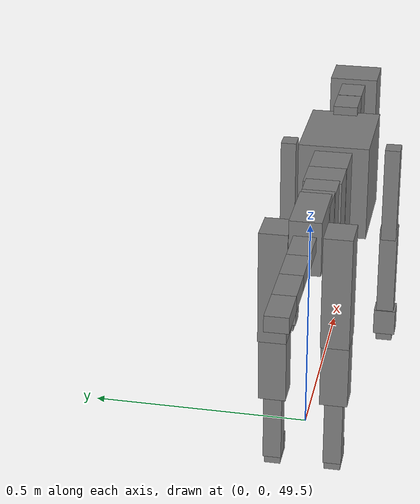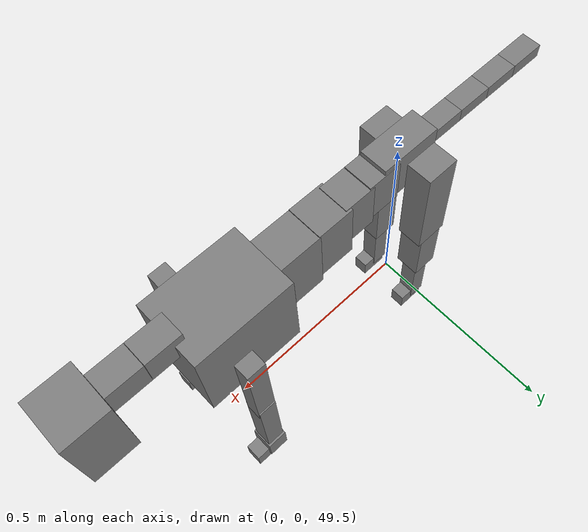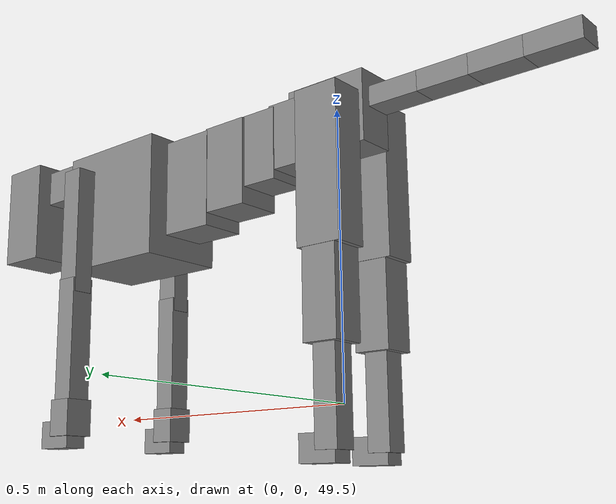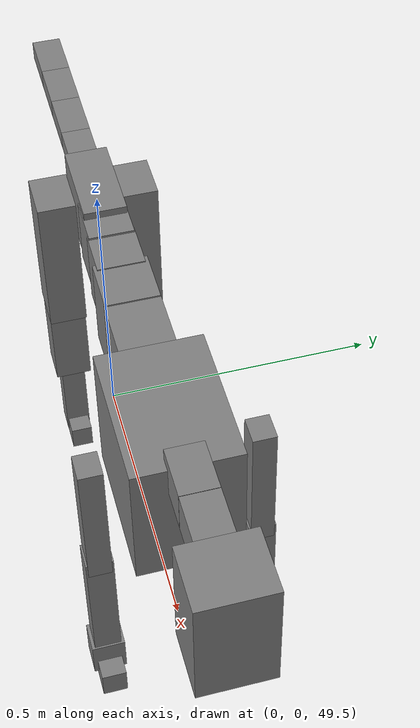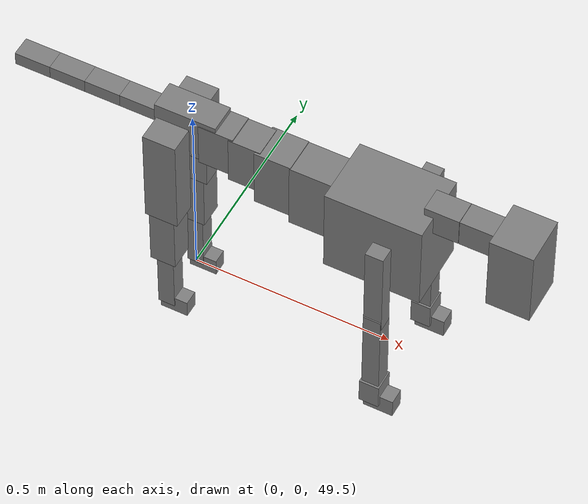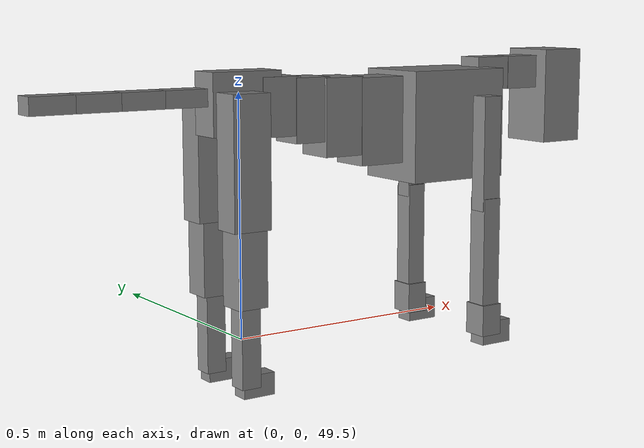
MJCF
<mujoco model="dog">

    <default>
        <joint armature="0.02" stiffness="1" damping="0.2" limited="true"/>
        <geom condim="3" friction="1 0.05 0.05" margin="0.01"/>
        <motor ctrllimited="true" ctrlrange="-1.0 1.0" forcelimited="true" gear="50"/>
    </default>

    <compiler inertiafromgeom="true" angle="radian"/>

    <option timestep="0.016" iterations="50" tolerance="1e-10" solver="Newton" jacobian="dense" cone="pyramidal"/>

    <size nconmax="20000" njmax="60000" nstack="5000000"/>
    <visual>
        <map force="0.1" zfar="30"/>
        <rgba haze="0.15 0.25 0.35 1"/>
        <quality shadowsize="2048"/>
        <global offwidth="800" offheight="800"/>
    </visual>

    <asset>
        <texture type="skybox" builtin="gradient" rgb1="0.3 0.5 0.7" rgb2="0 0 0" width="512" height="512"/>
        <texture name="texplane" type="2d" builtin="checker" rgb1=".2 .3 .4" rgb2=".1 0.15 0.2" width="512" height="512"
                 mark="cross" markrgb=".8 .8 .8"/>
        <texture name="texgeom" type="cube" builtin="flat" mark="cross" width="127" height="1278" rgb1="0.8 0.6 0.4"
                 rgb2="0.8 0.6 0.4" markrgb="1 1 1" random="0.01"/>

        <material name="matplane" reflectance="0.3" texture="texplane" texrepeat="1 1" texuniform="true"/>
        <material name="matgeom" texture="texgeom" texuniform="true" rgba="0.8 0.6 .4 1"/>
    </asset>

    <worldbody>
        <geom name="floor" pos="0 0 0" size="0 0 .25" type="plane" material="matplane" condim="3"/>

        <light directional="false" diffuse=".2 .2 .2" specular="0 0 0" pos="0 0 5" dir="0 0 -1" castshadow="false"/>
        <light mode="targetbodycom" target="torso" directional="false" diffuse=".8 .8 .8" specular="0.3 0.3 0.3"
               pos="0 0 4.0" dir="0 0 -1"/>

        <body name="root" pos="0 0 50">
            <freejoint name="root_1"/>
            <geom type="box" pos="0 0 -0.02" size="0.0774  0.0358  0.063" density="2030"/>

            <body name="spine1" pos="0.054 0 0">
                <joint name="spine1_y" axis="0 1 0" range="0 0.7" limited="true"/>
                <geom type="box" pos="0.02375 0 -0.03" size="0.04375  0.0375  0.05985" density="2030"/>

                <body name="spine2" pos="0.0612 0 0">
                    <joint name="spine2_y" axis="0 1 0" range="-0.15 0.15" limited="true"/>
                    <geom type="box" pos="0.03555  0  -0.04" size="0.04055  0.039  0.06615" density="2030"/>

                    <body name="spine3" pos="0.0730 0 0">
                        <joint name="spine3_y" axis="0 1 0" range="-0.15 0.15" limited="true"/>
                        <geom type="box" pos="0.03555  0  -0.057" size="0.04555  0.0445  0.081" density="2030"/>

                        <body name="spine4" pos="0.0780 0 0">
                            <joint name="spine4_y" axis="0 1 0" range="-0.15 0.15" limited="true"/>
                            <geom type="box" pos="0.05265  0  -0.07" size="0.05265  0.045  0.09135" density="2030"/>

                            <body name="torso" pos="0.1082 0 0">
                                <joint name="torso_y" axis="0 1 0" range="-0.15 0.15" limited="true"/>
                                <geom type="box" pos="0.11925  0  -0.085" size="0.11925  0.085  0.11745"
                                      density="2030"/>

                                <body name="neck1" pos="0.2160  0   0.0180">
                                    <joint name="neck1_y" axis="0 1 0" range="-1.2  -1" limited="true"/>
                                    <geom type="box" pos="0.0423  0  0" size="0.0423  0.03  0.036" density="2325"/>

                                    <body name="neck2" pos="0.0853  0  0">
                                        <joint name="neck2_y" axis="0 1 0" range="0.1  0" limited="true"/>
                                        <geom type="box" pos="0.0423  0  0" size="0.0423  0.03  0.036" density="2325"/>

                                        <body name="head" pos="0.0853  0  0">
                                            <joint name="head_y" axis="0 1 0" range="-0.3  -0.2" limited="true"/>
                                            <geom type="box" pos="0.0531  0  -0.055" size="0.0531  0.06  0.1044"
                                                  density="4030"/>

                                        </body>
                                    </body>
                                </body>

                                <body name="front_shoulder" pos="0.156  0   -0.0480">
                                    <joint name="front_shoulder_y" axis="0 1 0" range="-1 1.5" limited="true"/>
                                    <geom type="box" pos="0 0.13 -0.0955" size="0.0223  0.0190  0.1221" density="1158"/>
                                    <geom type="box" pos="0 -0.13 -0.0955" size="0.0223  0.0190  0.1221"
                                          density="1158"/>

                                    <body name="front_elbow" pos="0  0  -0.1910">
                                        <joint name="front_elbow_y" axis="0 1 0" range="-2 0" limited="true"/>
                                        <geom type="box" pos="0 0.13 -0.1213" size="0.0215  0.0220  0.1213"
                                              density="1081"/>
                                        <geom type="box" pos="0 -0.13 -0.1213" size="0.0215  0.0220  0.1213"
                                              density="1081"/>

                                        <body name="front_wrist" pos="0  0  -0.2426">
                                            <joint name="front_wrist_y" axis="0 1 0" range="-0.2 0" limited="true"/>
                                            <geom type="box" pos="0 0.13 -0.0204" size="0.0246  0.0273  0.0335"
                                                  density="1664"/>
                                            <geom type="box" pos="0 -0.13 -0.0204" size="0.0246  0.0273  0.0335"
                                                  density="1664"/>

                                            <body name="front_finger_end" pos="0  0  -0.0407">
                                                <joint name="front_finger_y" axis="0 1 0" range="-0.4 1"
                                                       limited="true"/>
                                                <geom type="box" pos="0.0203  0.13  -0.0100"
                                                      size="0.0372  0.0203  0.0250" density="1515"/>
                                                <geom type="box" pos="0.0203  -0.13  -0.0100"
                                                      size="0.0372  0.0203  0.0250" density="1515"/>

                                            </body>

                                        </body>
                                    </body>
                                </body>

                            </body>
                        </body>
                    </body>
                </body>
            </body>

            <body name="back_hip" pos="-0.03 0 -0.018">
                <joint name="back_hip_y" axis="0 1 0" range="-1.5 0.3" limited="true"/>
                <geom type="box" pos="0 0.07 -0.1104" size="0.0412  0.0323  0.1332" density="1154"/>
                <geom type="box" pos="0 -0.07 -0.1104" size="0.0412  0.0323  0.1332" density="1154"/>

                <body name="back_knee" pos="0  0  -0.2208">
                    <joint name="back_knee_y" axis="0 1 0" range="0 2.8" limited="true"/>
                    <geom type="box" pos="0 0.07 -0.0798" size="0.0320  0.0315  0.0953" density="1227"/>
                    <geom type="box" pos="0 -0.07 -0.0798" size="0.0320  0.0315  0.0953" density="1227"/>

                    <body name="back_ankle" pos="0  0  -0.1596">
                        <joint name="back_ankle_y" axis="0 1 0" range="-2.2 0" limited="true"/>
                        <geom type="box" pos="0 0.07 -0.0833" size="0.0211  0.0211  0.0945" density="1284"/>
                        <geom type="box" pos="0 -0.07 -0.0833" size="0.0211  0.0211  0.0945" density="1284"/>

                        <body name="back_toe_end" pos="0  0  -0.1666">
                            <joint name="back_toe_y" axis="0 1 0" range="-0.4 1" limited="true"/>
                            <geom type="box" pos="0.0189  0.07  -0.0080" size="0.0346  0.0189  0.0230" density="1515"/>
                            <geom type="box" pos="0.0189  -0.07  -0.0080" size="0.0346  0.0189  0.0230" density="1515"/>

                        </body>
                    </body>
                </body>
            </body>

            <body name="tail1" pos="-0.074 0 -0.006">
                <joint name="tail1_y" axis="0 1 0" range="-0.2 0.2" limited="true"/>
                <geom type="box" pos="-0.0536  0  0" size="0.045  0.025  0.0175" density="1587"/>

                <body name="tail2" pos="-0.09 0 0">
                    <joint name="tail2_y" axis="0 1 0" range="-0.2 0.2" limited="true"/>
                    <geom type="box" pos="-0.0536  0  0" size="0.045  0.025  0.0175" density="1587"/>

                    <body name="tail3" pos="-0.09 0 0">
                        <joint name="tail3_y" axis="0 1 0" range="-0.2 0.2" limited="true"/>
                        <geom type="box" pos="-0.0536  0  0" size="0.045  0.025  0.0175" density="1587"/>

                        <body name="tail4" pos="-0.09 0 0">
                            <joint name="tail4_y" axis="0 1 0" range="-0.2 0.2" limited="true"/>
                            <geom type="box" pos="-0.0536  0  0" size="0.045  0.025  0.0175" density="1587"/>

                        </body>
                    </body>
                </body>
            </body>
        </body>
    </worldbody>

    <actuator>
        <motor joint="spine1_y" forcerange="-150 150     "/>
        <motor joint="spine2_y" forcerange="-150 150     "/>
        <motor joint="spine3_y" forcerange="-150 150     "/>
        <motor joint="spine4_y" forcerange="-150 150     "/>
        <motor joint="torso_y" forcerange="-150 150     "/>
        <motor joint="neck1_y" forcerange="-100 100       "/>
        <motor joint="neck2_y" forcerange="-100 100       "/>
        <motor joint="head_y" forcerange="-150 150       "/>
        <motor joint="front_shoulder_y" forcerange="-114.16 112.76"/>
        <motor joint="front_elbow_y" forcerange="-106.64 153.46"/>
        <motor joint="front_wrist_y" forcerange="-139.65 79.12"/>
        <motor joint="front_finger_y" forcerange="-32.40 35.92"/>
        <motor joint="back_hip_y" forcerange="-293.67 336.84"/>
        <motor joint="back_knee_y" forcerange="-347.49 310.67"/>
        <motor joint="back_angle_y" forcerange="-183.77 53.28"/>
        <motor joint="back_toe_y" forcerange="-29.20 41.88"/>
        <motor joint="tail1_y" forcerange="-50 50     "/>
        <motor joint="tail2_y" forcerange="-50 50     "/>
        <motor joint="tail3_y" forcerange="-50 50     "/>
        <motor joint="tail4_y" forcerange="-50 50     "/>
    </actuator>
</mujoco>
